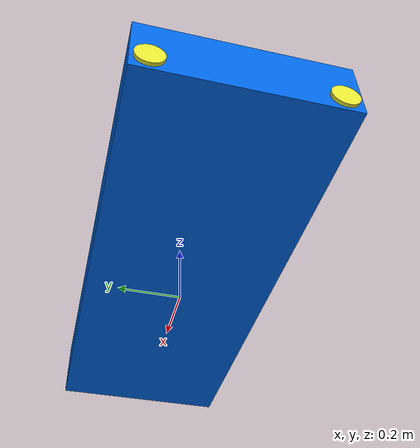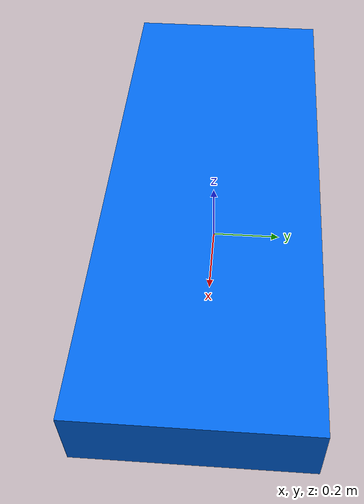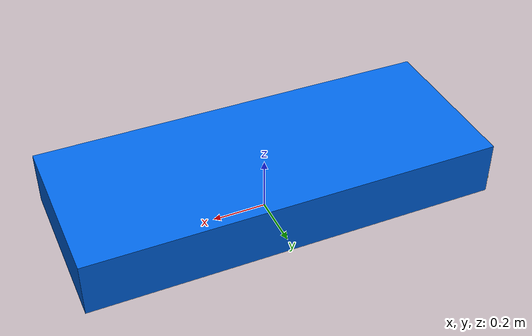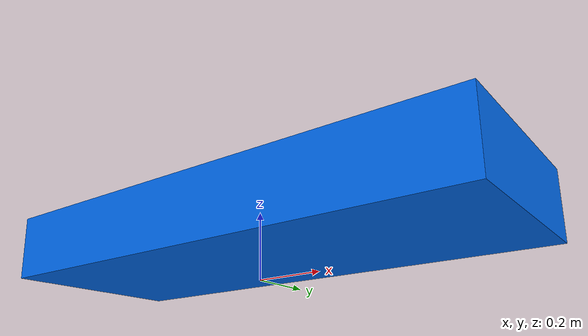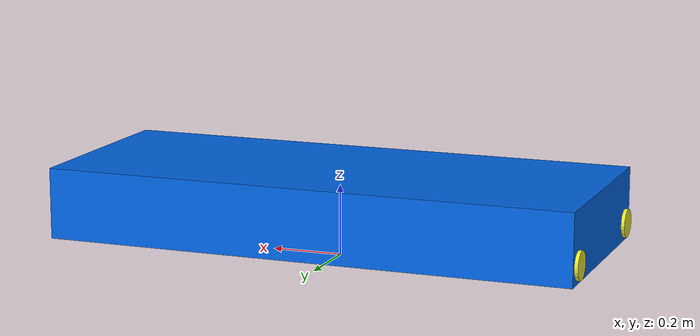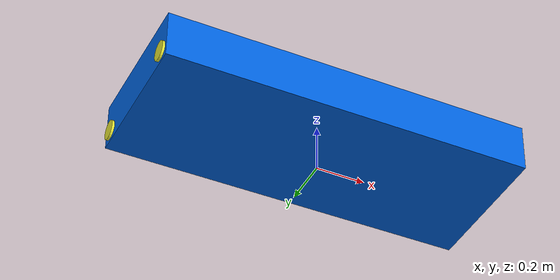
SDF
<?xml version="1.0"?>
<sdf version="1.9">
  <model name="asket_ec">

    <!-- Permet au modèle de bouger librement dans la simulation -->
    <static>false</static>

    <!-- Pose initiale du bateau : z=0.15 pour être clairement au-dessus
         du plan d'eau (z=0) et éviter toute pénétration géométrique initiale -->
    <pose>0 0 0.15 0 0 0</pose>

    <link name="hull">

      <!--
        INERTIAL — Propriétés physiques
        Ces valeurs déterminent comment le bateau réagit aux forces.
        Une inertie incorrecte rend la simulation instable !
      -->
      <inertial>
        <mass>10.0</mass>  <!-- kg -->
        <inertia>
          <!-- Moments d'inertie (voir calcul en tête de fichier) -->
          <ixx>0.367</ixx>   <!-- Résistance aux rotations roll (tangage latéral) -->
          <ixy>0</ixy>       <!-- Produits d'inertie = 0 (symétrie parfaite) -->
          <ixz>0</ixz>
          <iyy>1.908</iyy>   <!-- Résistance aux rotations pitch (tangage avant/arrière) -->
          <iyz>0</iyz>
          <izz>2.175</izz>   <!-- Résistance aux rotations yaw (rotation horizontale) -->
        </inertia>
        <!-- Centre de masse légèrement sous le centre géométrique pour la stabilité -->
        <pose>0 0 -0.02 0 0 0</pose>
      </inertial>

      <!--
        VISUAL — Apparence 3D dans Gazebo
        Ce que tu vois dans le simulateur. Peut être plus détaillé que la collision.
      -->
      <visual name="hull_visual">
        <geometry>
          <box>
            <size>1.50 0.60 0.20</size>  <!-- longueur x largeur x hauteur en mètres -->
          </box>
        </geometry>
        <material>
          <ambient>0.0 0.3 0.8 1.0</ambient>   <!-- Couleur ambiante bleue -->
          <diffuse>0.0 0.4 0.9 1.0</diffuse>   <!-- Couleur diffuse bleue marine -->
          <specular>0.5 0.5 0.5 1.0</specular> <!-- Reflet brillant -->
        </material>
      </visual>

      <gravity>false</gravity>

      <velocity_decay>
        <linear>0.8</linear>
        <angular>0.9</angular>
      </velocity_decay>

      <sensor name="imu_sensor" type="imu">
        <pose>0 0 0.05 0 0 0</pose>  <!-- Monté légèrement au-dessus du centre -->
        <always_on>true</always_on>
        <update_rate>100</update_rate>  <!-- Hz : fréquence de mesure -->
        <imu>
          <angular_velocity>
            <x>
              <noise type="gaussian">
                <!-- Bruit réaliste pour simuler une vraie IMU -->
                <mean>0.0</mean>
                <stddev>0.009</stddev>  <!-- 9 mdeg/s de bruit typique -->
              </noise>
            </x>
            <y>
              <noise type="gaussian">
                <mean>0.0</mean>
                <stddev>0.009</stddev>
              </noise>
            </y>
            <z>
              <noise type="gaussian">
                <mean>0.0</mean>
                <stddev>0.009</stddev>
              </noise>
            </z>
          </angular_velocity>
          <linear_acceleration>
            <x>
              <noise type="gaussian">
                <mean>0.0</mean>
                <stddev>0.196</stddev>  <!-- ~0.02g de bruit typique -->
              </noise>
            </x>
            <y>
              <noise type="gaussian">
                <mean>0.0</mean>
                <stddev>0.196</stddev>
              </noise>
            </y>
            <z>
              <noise type="gaussian">
                <mean>0.0</mean>
                <stddev>0.196</stddev>
              </noise>
            </z>
          </linear_acceleration>
        </imu>
        <!-- Le système IMU est activé au niveau du monde (gz-sim-imu-system).
             Ne pas redéclarer le plugin ici — doublon qui bloque la publication. -->
        <topic>/asket_ec/imu</topic>
      </sensor>

      <sensor name="navsat_sensor" type="navsat">
        <pose>0 0 0.08 0 0 0</pose>  <!-- Antenne GPS sur le dessus -->
        <always_on>true</always_on>
        <update_rate>10</update_rate>  <!-- Hz : GPS standard = 1-10 Hz -->
        <navsat>
          <position_sensing>
            <horizontal>
              <noise type="gaussian">
                <mean>0.0</mean>
                <stddev>0.5</stddev>  <!-- ±0.5m de précision (GPS civil standard) -->
              </noise>
            </horizontal>
            <vertical>
              <noise type="gaussian">
                <mean>0.0</mean>
                <stddev>1.0</stddev>  <!-- ±1m vertical (GPS moins précis verticalement) -->
              </noise>
            </vertical>
          </position_sensing>
          <velocity_sensing>
            <horizontal>
              <noise type="gaussian">
                <mean>0.0</mean>
                <stddev>0.1</stddev>  <!-- ±0.1 m/s de précision vitesse -->
              </noise>
            </horizontal>
          </velocity_sensing>
        </navsat>
        <!-- Le système NavSat est activé au niveau du monde (gz-sim-navsat-system).
             Ne pas redéclarer le plugin ici — doublon qui bloque la publication. -->
        <topic>/asket_ec/navsat</topic>
      </sensor>

    </link>
    <!-- Fin du link hull -->

    <link name="thruster_port">
      <pose>-0.70 0.25 -0.05 0 1.5708 0</pose>
      <!-- Rotation de 90° autour de Y pour que l'axe du cylindre
           soit aligné avec l'axe de propulsion (avant/arrière) -->

      <inertial>
        <mass>0.5</mass>  <!-- kg, poids du moteur + hélice -->
        <inertia>
          <!-- Inertie d'un petit cylindre de 0.5kg -->
          <ixx>0.001</ixx>
          <ixy>0</ixy>
          <ixz>0</ixz>
          <iyy>0.001</iyy>
          <iyz>0</iyz>
          <izz>0.001</izz>
        </inertia>
      </inertial>

      <visual name="thruster_port_visual">
        <geometry>
          <cylinder>
            <radius>0.04</radius>   <!-- 4 cm de rayon (représente l'hélice) -->
            <length>0.12</length>   <!-- 12 cm de long (tube du propulseur) -->
          </cylinder>
        </geometry>
        <material>
          <ambient>0.7 0.7 0.1 1.0</ambient>   <!-- Couleur jaune pour distinguer -->
          <diffuse>0.9 0.9 0.2 1.0</diffuse>
        </material>
      </visual>

      <!-- Gravity false + damping sur le thruster_port pour éviter
           que le link tourne librement sous le couple de réaction -->
      <gravity>false</gravity>
      <velocity_decay>
        <linear>0.5</linear>
        <angular>0.9</angular>
      </velocity_decay>
    </link>

    <!-- Joint revolute requis par ThrusterPlugin (segfault sinon dans JointAxis::Xyz).
         Le damping=1.0 sur l'axe amortit les rotations libres du joint. -->
    <joint name="thruster_port_joint" type="revolute">
      <parent>hull</parent>
      <child>thruster_port</child>
      <axis>
        <xyz>1 0 0</xyz>
        <limit>
          <lower>-1e10</lower>
          <upper>1e10</upper>
          <effort>1000</effort>
          <velocity>10000</velocity>
        </limit>
        <dynamics>
          <damping>1.0</damping>
          <friction>0.0</friction>
        </dynamics>
      </axis>
    </joint>

    <link name="thruster_starboard">
      <pose>-0.70 -0.25 -0.05 0 1.5708 0</pose>

      <inertial>
        <mass>0.5</mass>
        <inertia>
          <ixx>0.001</ixx>
          <ixy>0</ixy>
          <ixz>0</ixz>
          <iyy>0.001</iyy>
          <iyz>0</iyz>
          <izz>0.001</izz>
        </inertia>
      </inertial>

      <visual name="thruster_starboard_visual">
        <geometry>
          <cylinder>
            <radius>0.04</radius>
            <length>0.12</length>
          </cylinder>
        </geometry>
        <material>
          <ambient>0.7 0.7 0.1 1.0</ambient>
          <diffuse>0.9 0.9 0.2 1.0</diffuse>
        </material>
      </visual>

      <!-- Gravity false + damping sur le thruster_starboard -->
      <gravity>false</gravity>
      <velocity_decay>
        <linear>0.5</linear>
        <angular>0.9</angular>
      </velocity_decay>
    </link>

    <!-- Joint revolute requis par ThrusterPlugin — même config que thruster_port -->
    <joint name="thruster_starboard_joint" type="revolute">
      <parent>hull</parent>
      <child>thruster_starboard</child>
      <axis>
        <xyz>1 0 0</xyz>
        <limit>
          <lower>-1e10</lower>
          <upper>1e10</upper>
          <effort>1000</effort>
          <velocity>10000</velocity>
        </limit>
        <dynamics>
          <damping>1.0</damping>
          <friction>0.0</friction>
        </dynamics>
      </axis>
    </joint>

    <plugin
      filename="gz-sim-hydrodynamics-system"
      name="gz::sim::systems::Hydrodynamics">
      <link_name>hull</link_name>
      <!-- Coefficients d'inertie ajoutée = 0 pour stabilité DART -->
      <xDotU>0</xDotU>
      <yDotV>0</yDotV>
      <zDotW>0</zDotW>
      <kDotP>0</kDotP>
      <mDotQ>0</mDotQ>
      <nDotR>0</nDotR>
      <!-- Résistances quadratiques conservatrices -->
      <xUU>-5.0</xUU>
      <yVV>-50.0</yVV>
      <zWW>-500.0</zWW>
      <kPP>-5.0</kPP>
      <mQQ>-5.0</mQQ>
      <nRR>-5.0</nRR>
    </plugin>

    <plugin
      filename="gz-sim-thruster-system"
      name="gz::sim::systems::Thruster">
      <namespace>asket_ec</namespace>
      <joint_name>thruster_port_joint</joint_name>
      <thrust_coefficient>0.004</thrust_coefficient>  <!-- Kt -->
      <fluid_density>1000</fluid_density>             <!-- ρ eau douce -->
      <propeller_diameter>0.08</propeller_diameter>   <!-- D = 8 cm -->
      <velocity_control>true</velocity_control>
      <max_thrust_cmd>1000</max_thrust_cmd>   <!-- N, limite haute de commande -->
      <min_thrust_cmd>-1000</min_thrust_cmd>  <!-- N, limite basse (marche arrière) -->
      <topic>/asket_ec/thruster/port/cmd</topic>
    </plugin>

    <plugin
      filename="gz-sim-thruster-system"
      name="gz::sim::systems::Thruster">
      <namespace>asket_ec</namespace>
      <joint_name>thruster_starboard_joint</joint_name>
      <thrust_coefficient>0.004</thrust_coefficient>
      <fluid_density>1000</fluid_density>
      <propeller_diameter>0.08</propeller_diameter>
      <velocity_control>true</velocity_control>
      <max_thrust_cmd>1000</max_thrust_cmd>
      <min_thrust_cmd>-1000</min_thrust_cmd>
      <topic>/asket_ec/thruster/starboard/cmd</topic>
    </plugin>

  </model>
</sdf>
